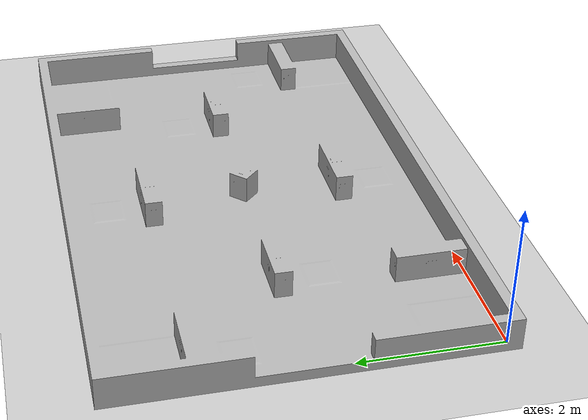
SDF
<sdf version='1.4'>
  <world name='default'>
    <!-- A global light source -->
    <include>
      <uri>model://sun</uri>
    </include>

    <include>
      <uri>model://ground_plane</uri>
    </include>-->

    <physics type="ode">
      <real_time_update_rate>1000.0</real_time_update_rate>
      <max_step_size>0.001</max_step_size>
      <real_time_factor>1</real_time_factor>
      <ode>
        <solver>
          <type>quick</type>
          <iters>150</iters>
          <precon_iters>0</precon_iters>
          <sor>1.400000</sor>
          <use_dynamic_moi_rescaling>1</use_dynamic_moi_rescaling>
        </solver>
        <constraints>
          <cfm>0.00001</cfm>
          <erp>0.2</erp>
          <contact_max_correcting_vel>2000.000000</contact_max_correcting_vel>
          <contact_surface_layer>0.01000</contact_surface_layer>
        </constraints>
      </ode>
    </physics>

    <include>
      <uri>model://icra_field</uri>
      <pose>4.05 2.55 0 1.57 0 0</pose>
    </include>

    <gui fullscreen='0'>
      <camera name='user_camera'>
        <pose>0.8 0.0 12.0 0 1.5708 0</pose>
        <view_controller>orbit</view_controller>
      </camera>
    </gui>
  </world>
</sdf>

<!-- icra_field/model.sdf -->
<sdf version="1.4">
  <model name="icra_field">
    <static>true</static>
    <link name="link">
      <pose>0 0 0 0 0 0</pose>
      <must_be_base_link>1</must_be_base_link>
      <collision name="collision">
        <geometry>
          <mesh>
            <uri>model://icra_field/meshes/field.dae</uri>
          </mesh>
        </geometry>
      </collision>
      <visual name="visual">
        <cast_shadows>false</cast_shadows>
        <geometry>
          <mesh>
            <uri>model://icra_field/meshes/field.dae</uri>
          </mesh>
        </geometry>
      </visual>
    </link>
  </model>
</sdf>
